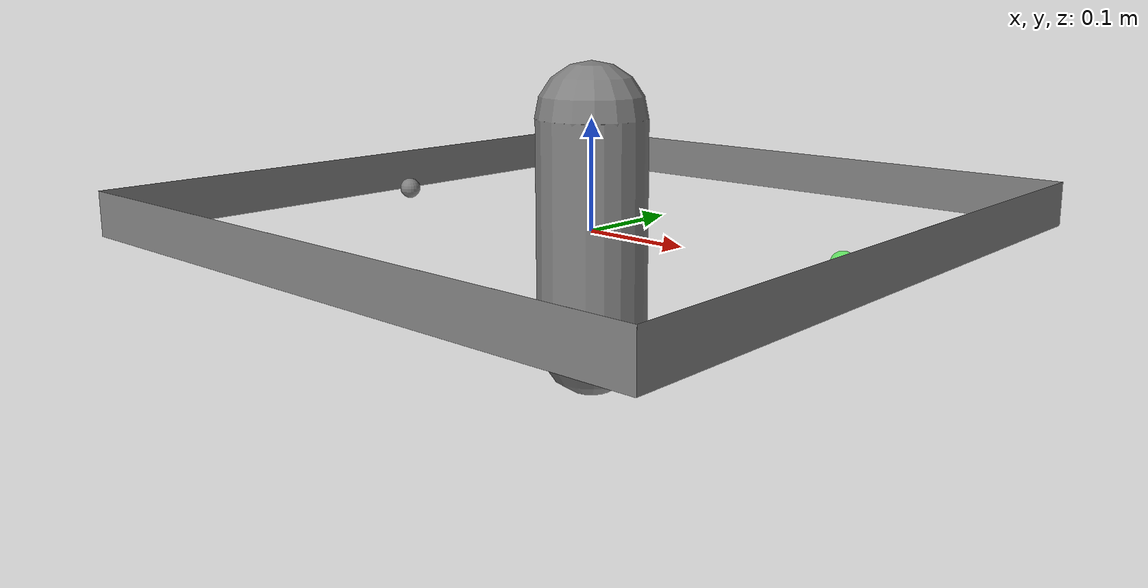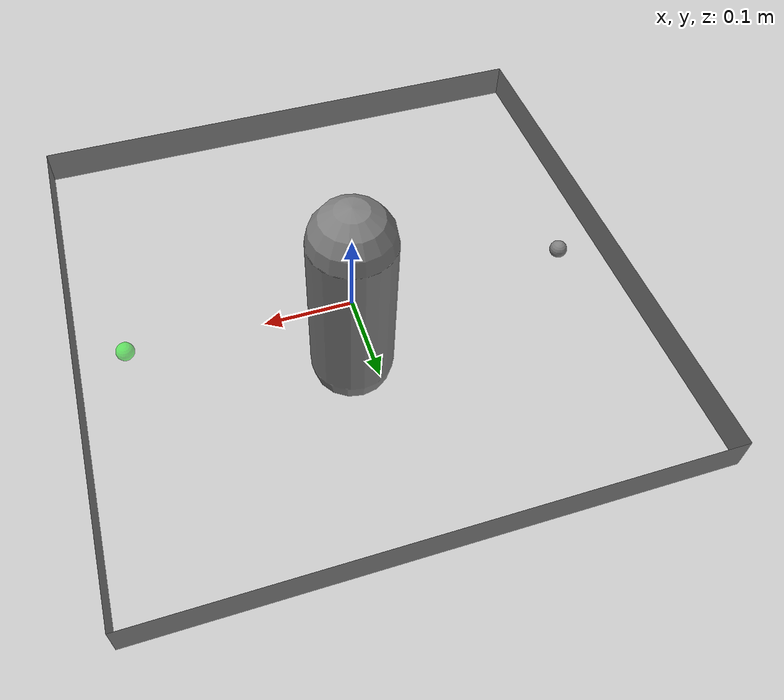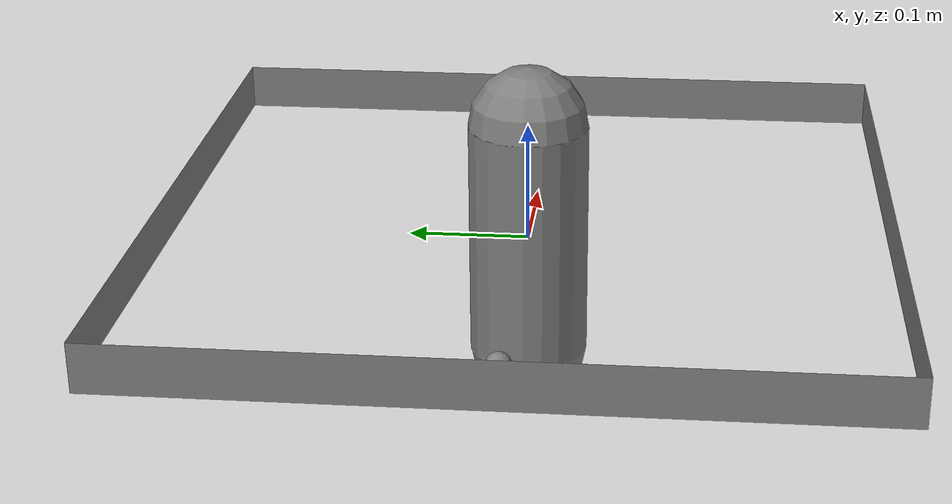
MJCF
<mujoco model="particle">
  <!-- Adopted from the MJPC particle task:
    https://github.com/google-deepmind/mujoco_mpc/tree/main/mjpc/tasks/particle
  -->
  <option timestep="0.01" iterations="1" ls_iterations="4">
    <flag contact="enable" eulerdamp="enable"/>
  </option>

  <default>
    <joint type="hinge" axis="0 0 1" limited="true" range="-0.1 0.6" damping="1" />
    <motor gear=".1" ctrlrange="-1 1" ctrllimited="true" />
  </default>

  <worldbody>
    <body name="goal" mocap="true" pos="0.25 0 0.01" quat="1 0 0 0">
      <geom type="sphere" size=".01" contype="0" conaffinity="0" rgba="0 1 0 .5" />
    </body>

    <body name="obstacle" mocap="true" pos="0 0 0" quat="1 0 0 0">
      <geom type="capsule" size="0.05 0.1"/>
    </body>

    <geom name="wall_x" type="plane" pos="-.3 0 .02" zaxis="1 0 0" size=".02 .3 .02" />
    <geom name="wall_y" type="plane" pos="0 -.3 .02" zaxis="0 1 0" size=".3 .02 .02" />
    <geom name="wall_neg_x" type="plane" pos=".3 0 .02" zaxis="-1 0 0" size=".02 .3 .02" />
    <geom name="wall_neg_y" type="plane" pos="0 .3 .02" zaxis="0 -1 0" size=".3 .02 .02" />

    <body name="pointmass" pos="-0.25 0 .01">
      <camera name="cam0" pos="0 -0.3 0.3" xyaxes="1 0 0 0 0.7 0.7" />
      <joint name="root_x" type="slide" pos="0 0 0" axis="1 0 0"/>
      <joint name="root_y" type="slide" pos="0 0 0" axis="0 1 0"/>
      <geom name="pointmass" type="sphere" size=".01" mass=".3" />
      <site name="pointmass" pos="0 0 0" size="0.01" />
    </body>
  </worldbody>

  <actuator>
    <motor name="x_motor" joint="root_x" gear="1" ctrllimited="true" ctrlrange="-1 1" />
    <motor name="y_motor" joint="root_y" gear="1" ctrllimited="true" ctrlrange="-1 1" />
  </actuator>
</mujoco>
